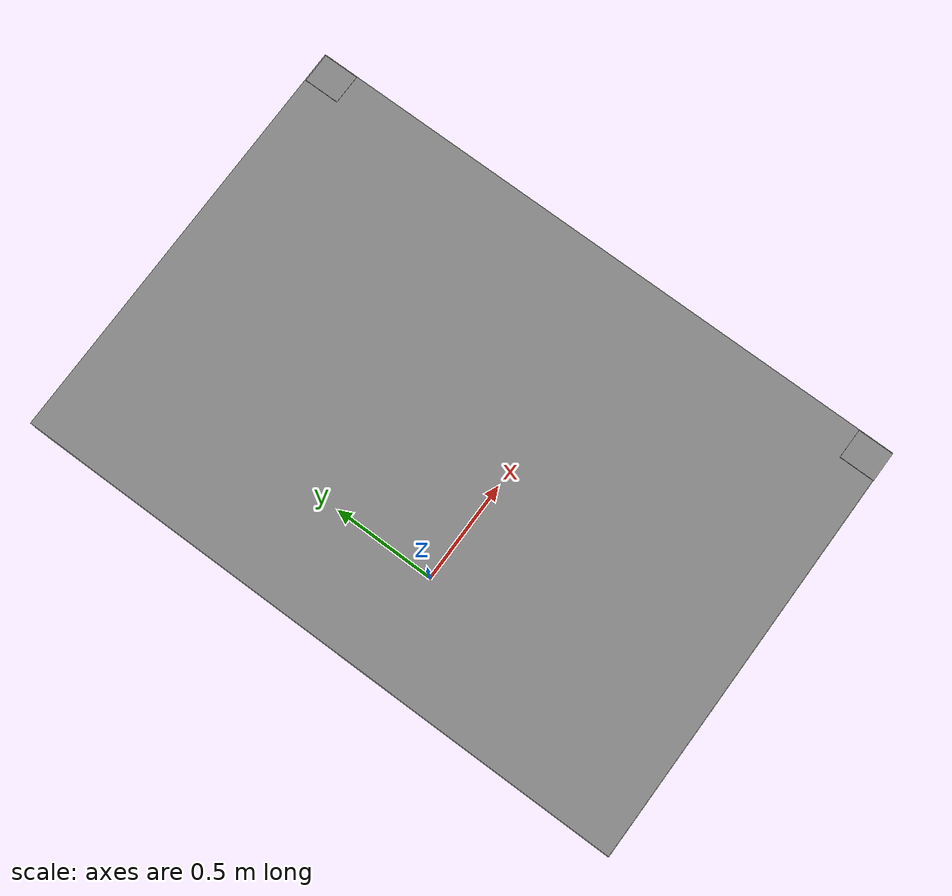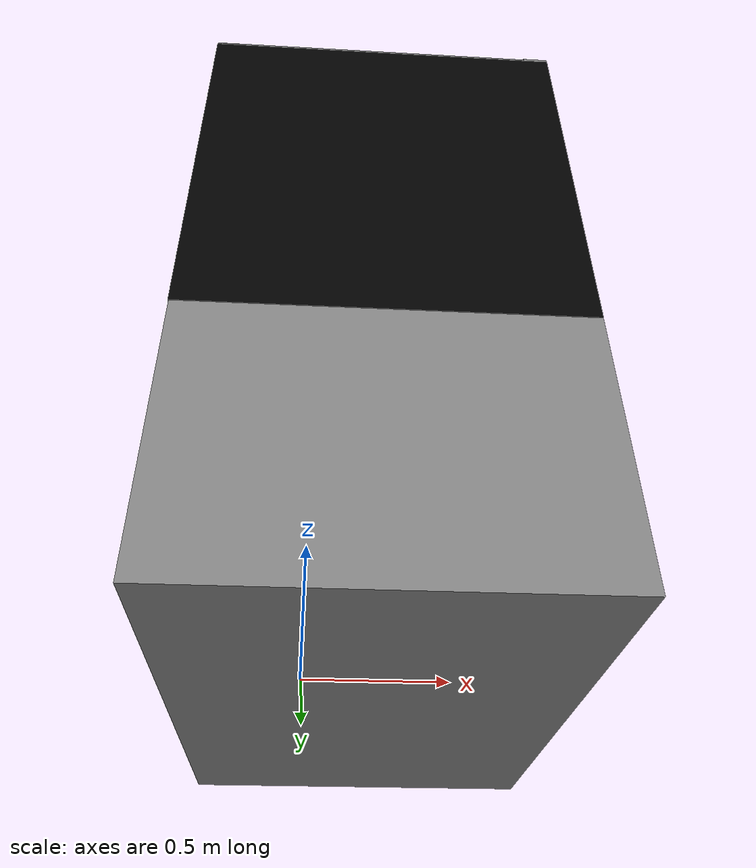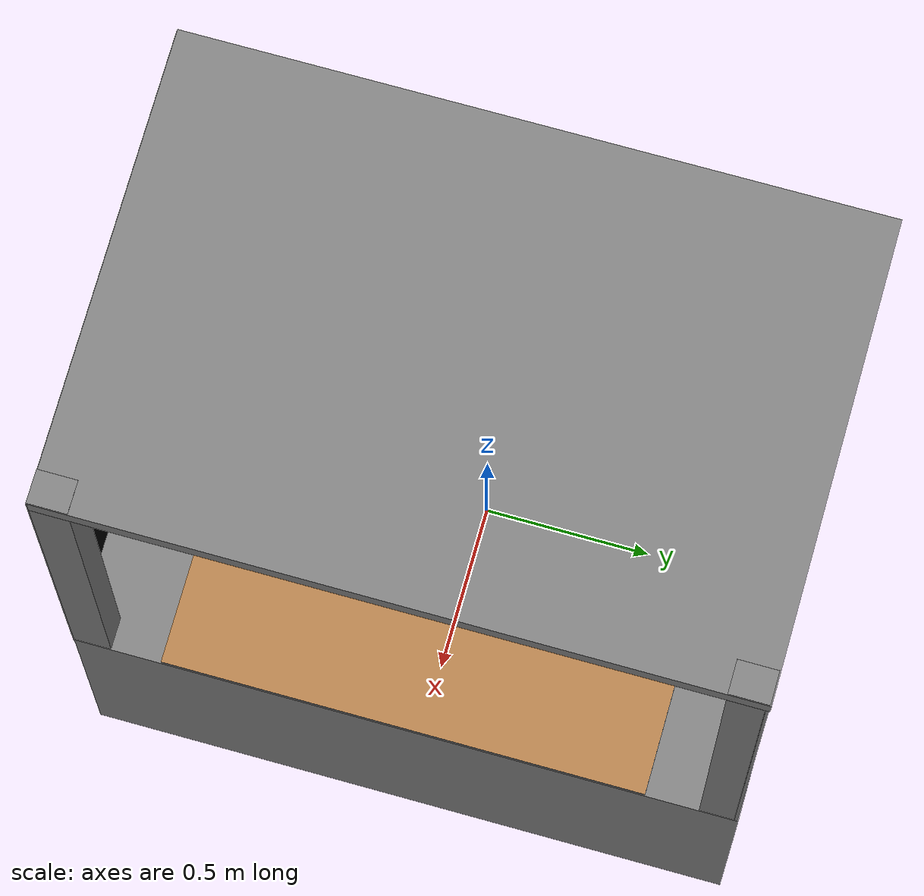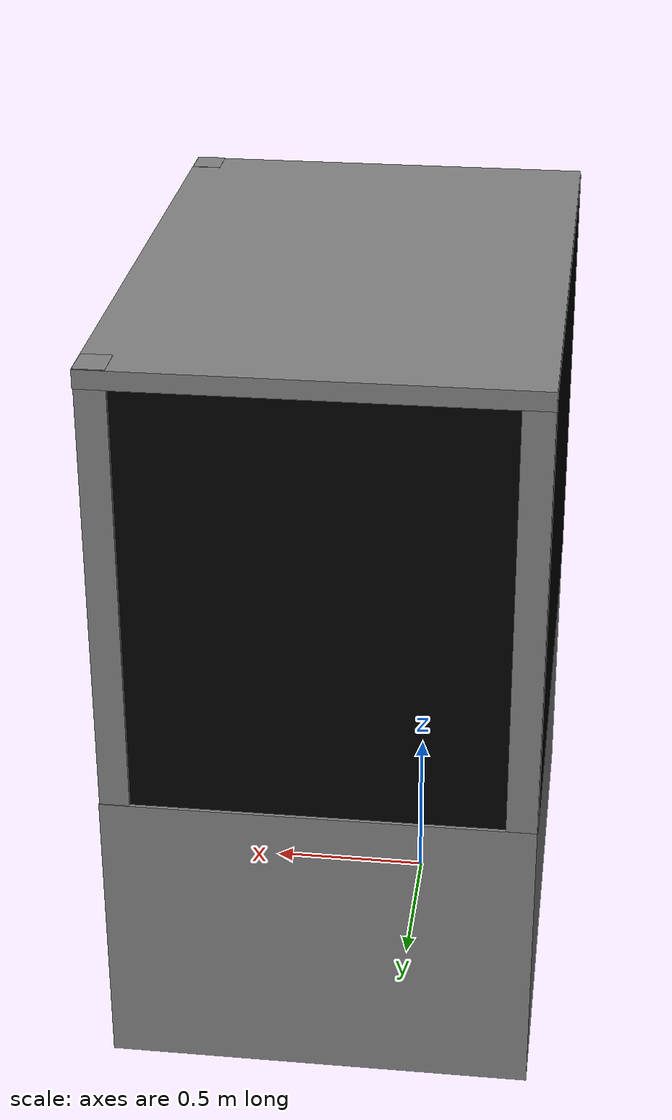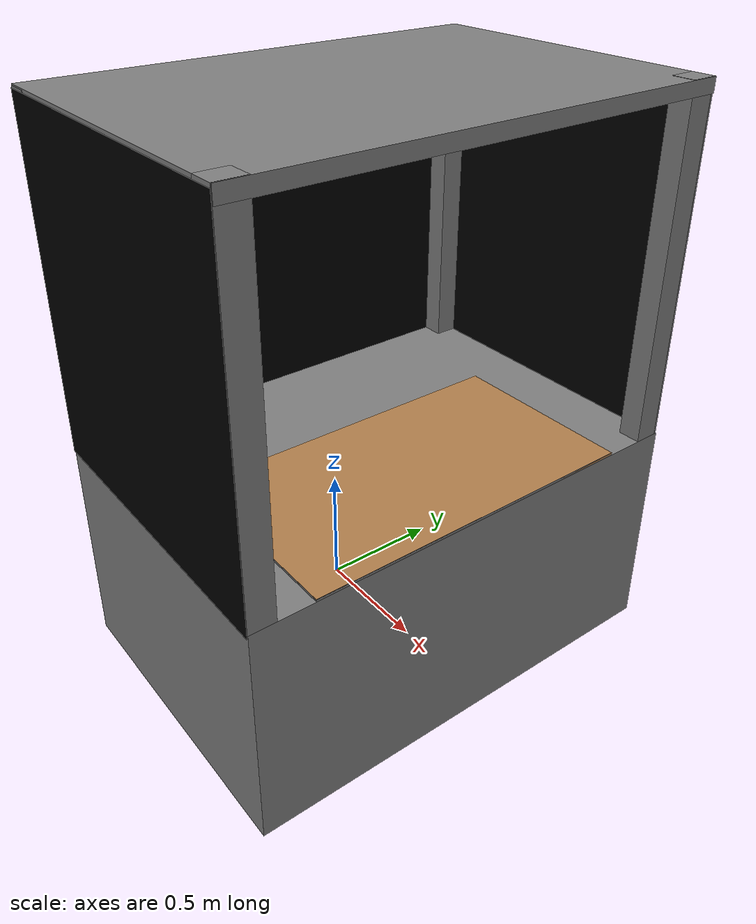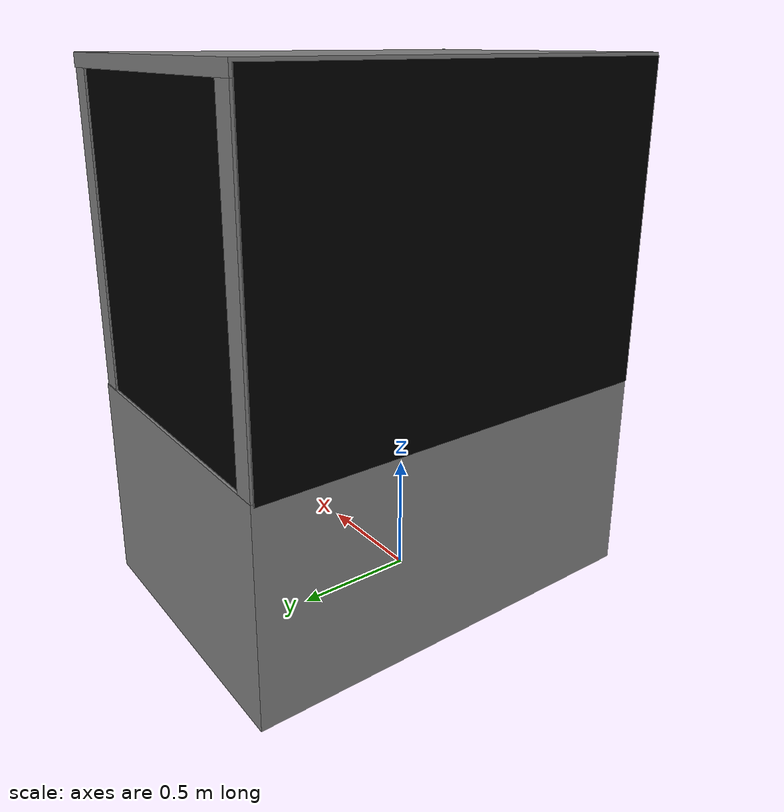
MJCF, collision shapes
<mujoco model="vention_table">
  <compiler angle="radian" assetdir="assets"  autolimits="true"/>
  <default>
    <default class="vention">
      <default class="visual">
        <geom type="mesh" contype="0" conaffinity="0" group="2"/>
      </default>
      <default class="visual_board">
        <geom type="mesh" contype="0" conaffinity="0" group="2"/>
      </default>
      <default class="collision">
        <geom type="mesh" group="3"/>
      </default>
    </default>
  </default>
  <asset>
    <mesh name="table_collision_bottom"   file="stl/table_collision_bottom.stl"/>
    <mesh name="table_collision_column_1" file="stl/table_collision_column_1.stl"/>
    <mesh name="table_collision_column_2" file="stl/table_collision_column_2.stl"/>
    <mesh name="table_collision_column_3" file="stl/table_collision_column_3.stl"/>
    <mesh name="table_collision_column_4" file="stl/table_collision_column_4.stl"/>
    <mesh name="table_collision_top" file="stl/table_collision_top.stl"/>
    <material name="0.262745_0.282353_0.301961_0.000000_0.000000" specular="0" shininess="0.0" rgba="0.11764705882352941 0.1450980392156863 0.12941176470588237 1"/>
    <material name="mat_0.002" specular="0.5" shininess="0.0" rgba="0.093085 0.246168 0.533335 1.000000"/>
    <mesh file="obj/vention_table_1.obj"/>
    <mesh file="obj/wood_board.obj"/>
    <texture name="wood_board" file="obj/wood_board.png" type="2d"/>
    <material name="wood_board" texture="wood_board" specular="0.0" shininess="0.0"/>
  </asset>
  <worldbody>
    <body name="vention_table" childclass="vention" pos="0.232625 0 0" quat="0.707107 0 0 -0.707107">
      <geom mesh="vention_table_1" material="mat_0.002" class="visual"/>
      <geom class="visual_board" type="box" size="0.39 0.696 0.007" material="wood_board" pos="0 0.262525 0.815" quat="0.707107 0 0 -0.707107"/>
      <geom class="collision" type="box" size="0.39 0.696 0.057" pos="0 0.262525 0.765" quat="0.707107 0 0 -0.707107"/>
      <geom class="collision" mesh="table_collision_bottom" />
      <geom class="collision" mesh="table_collision_column_1" />
      <geom class="collision" mesh="table_collision_column_2" />
      <geom class="collision" mesh="table_collision_column_3" />
      <geom class="collision" mesh="table_collision_column_4" />
      <geom class="collision" mesh="table_collision_top" />
      <geom type="box" name="curtain_long_side" size="0.95 0.001 0.7" rgba="0 0 0 1" pos="0.0 -0.655 1.5"/>
      <geom type="box" name="curtain_short_side_1" size="0.001 0.655 0.7" rgba="0 0 0 1" pos="-0.95 -0.001 1.5"/>
      <geom type="box" name="curtain_short_side_2" size="0.001 0.655 0.7" rgba="0 0 0 1" pos="0.95 -0.001 1.5"/>

    </body>
  </worldbody>
</mujoco>
